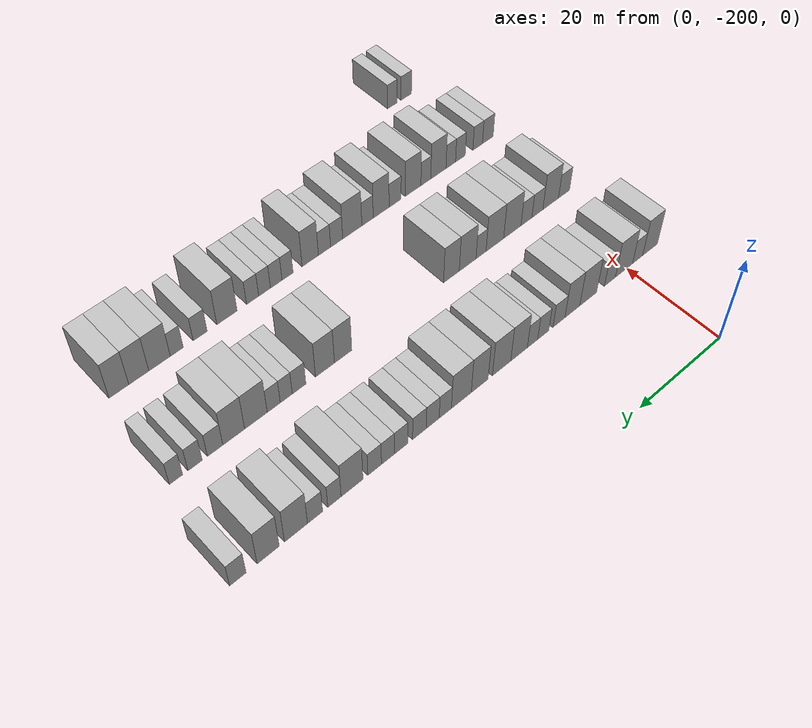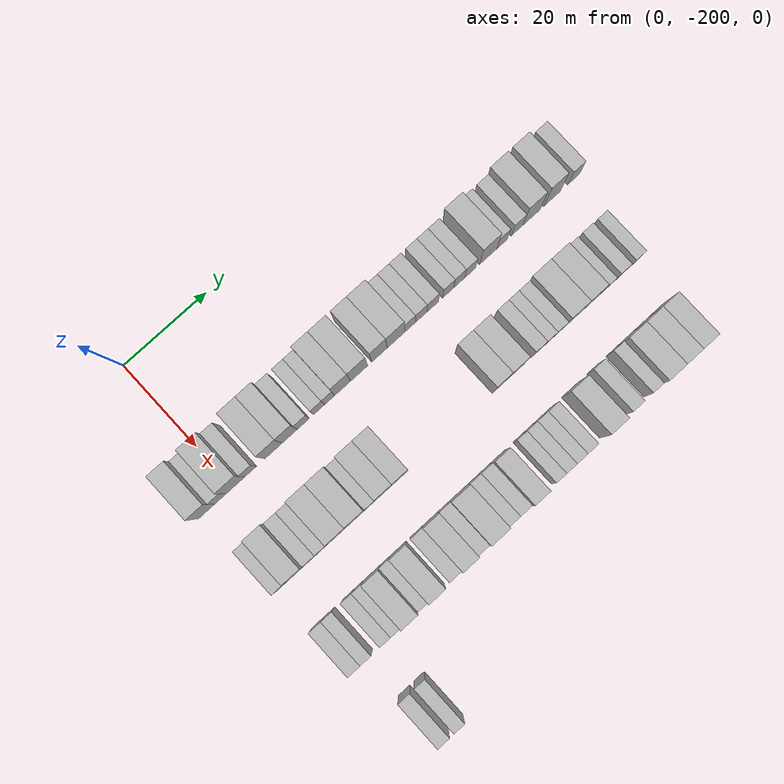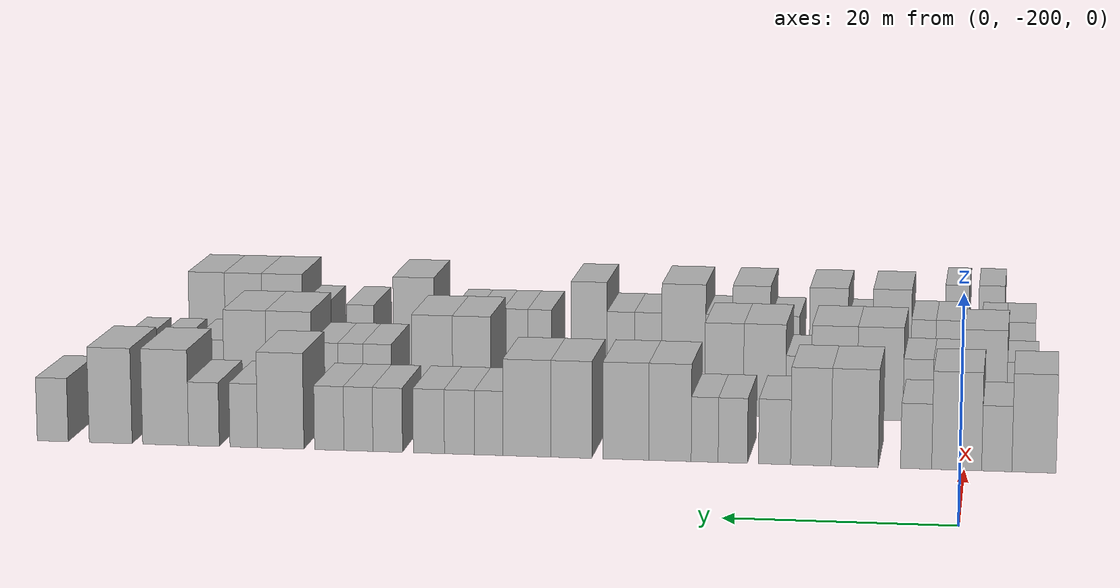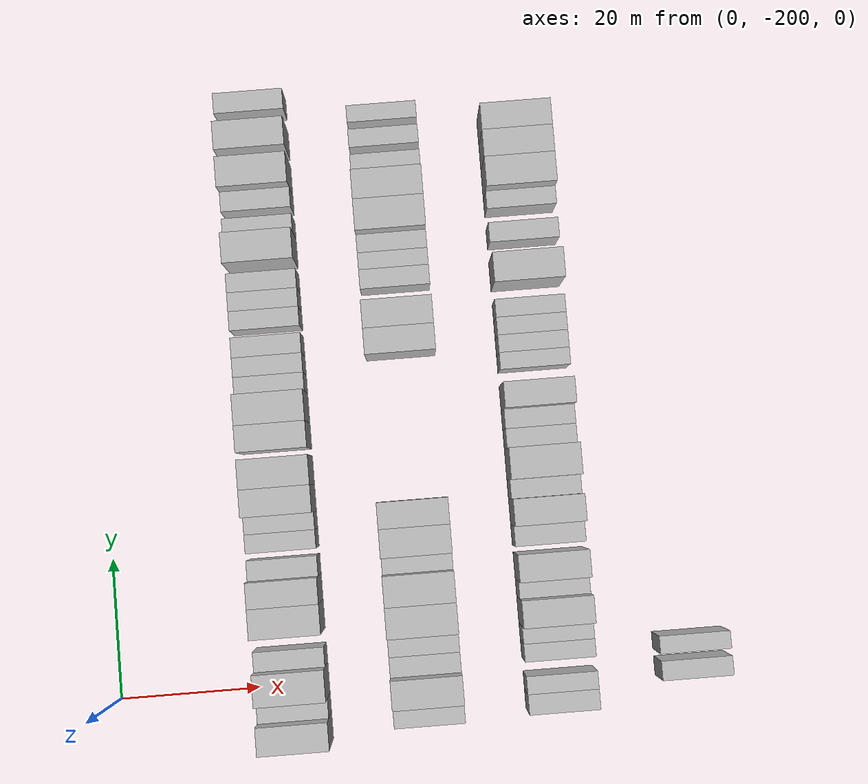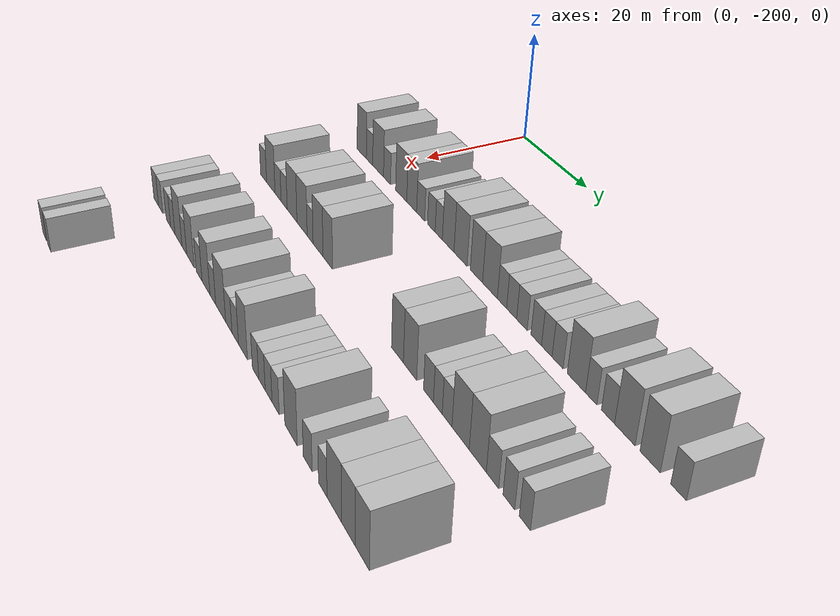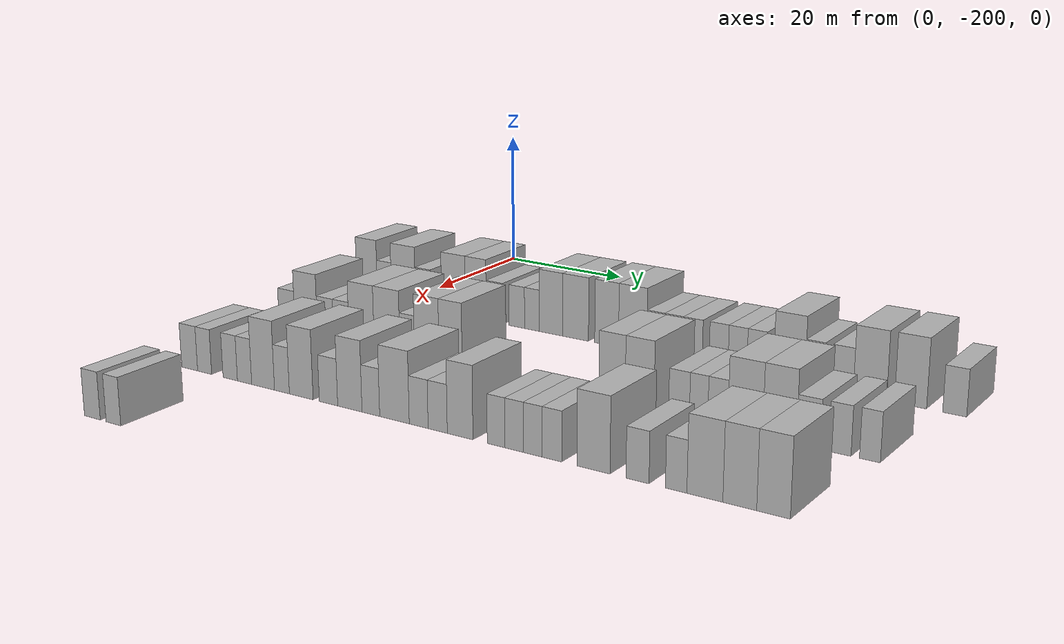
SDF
<sdf version="1.6">
 <world name="default">
  <model name="building_34">
   <static>1</static>
   <pose>25.0000 -206.1762 0 0.000000 0.000000 0.000000</pose>
   <link name="link">
    <pose>0 0 4.50 0 0 0</pose>
    <collision name="collision"><geometry><box><size>10.0000 3.9302 9.0000</size></box></geometry></collision>
    <visual name="visual">
     <cast_shadows>0</cast_shadows>
     <geometry><box><size>10.0000 3.9302 9.0000</size></box></geometry>
     <material>
      <script>
       <uri>model://HANNAS_wall/materials/scripts</uri>
       <uri>model://HANNAS_wall/materials/textures</uri>
       <name>vrc/HANNAS_wall</name>
      </script>
     </material>
    </visual>
   </link>
  </model>
  <model name="building_35">
   <static>1</static>
   <pose>25.0000 -202.8672 0 0.000000 0.000000 0.000000</pose>
   <link name="link">
    <pose>0 0 3.00 0 0 0</pose>
    <collision name="collision"><geometry><box><size>10.0000 2.6878 6.0000</size></box></geometry></collision>
    <visual name="visual">
     <cast_shadows>0</cast_shadows>
     <geometry><box><size>10.0000 2.6878 6.0000</size></box></geometry>
     <material>
      <script>
       <uri>model://HANNAS_wall/materials/scripts</uri>
       <uri>model://HANNAS_wall/materials/textures</uri>
       <name>vrc/HANNAS_wall</name>
      </script>
     </material>
    </visual>
   </link>
  </model>
  <model name="building_36">
   <static>1</static>
   <pose>25.0000 -199.2933 0 0.000000 0.000000 0.000000</pose>
   <link name="link">
    <pose>0 0 4.50 0 0 0</pose>
    <collision name="collision"><geometry><box><size>10.0000 4.4602 9.0000</size></box></geometry></collision>
    <visual name="visual">
     <cast_shadows>0</cast_shadows>
     <geometry><box><size>10.0000 4.4602 9.0000</size></box></geometry>
     <material>
      <script>
       <uri>model://HANNAS_wall/materials/scripts</uri>
       <uri>model://HANNAS_wall/materials/textures</uri>
       <name>vrc/HANNAS_wall</name>
      </script>
     </material>
    </visual>
   </link>
  </model>
  <model name="building_37">
   <static>1</static>
   <pose>25.0000 -195.6696 0 0.000000 0.000000 0.000000</pose>
   <link name="link">
    <pose>0 0 3.00 0 0 0</pose>
    <collision name="collision"><geometry><box><size>10.0000 2.7871 6.0000</size></box></geometry></collision>
    <visual name="visual">
     <cast_shadows>0</cast_shadows>
     <geometry><box><size>10.0000 2.7871 6.0000</size></box></geometry>
     <material>
      <script>
       <uri>model://HANNAS_wall/materials/scripts</uri>
       <uri>model://HANNAS_wall/materials/textures</uri>
       <name>vrc/HANNAS_wall</name>
      </script>
     </material>
    </visual>
   </link>
  </model>
  <model name="building_38">
   <static>1</static>
   <pose>25.0000 -190.1585 0 0.000000 0.000000 0.000000</pose>
   <link name="link">
    <pose>0 0 4.50 0 0 0</pose>
    <collision name="collision"><geometry><box><size>10.0000 4.2351 9.0000</size></box></geometry></collision>
    <visual name="visual">
     <cast_shadows>0</cast_shadows>
     <geometry><box><size>10.0000 4.2351 9.0000</size></box></geometry>
     <material>
      <script>
       <uri>model://HANNAS_wall/materials/scripts</uri>
       <uri>model://HANNAS_wall/materials/textures</uri>
       <name>vrc/HANNAS_wall</name>
      </script>
     </material>
    </visual>
   </link>
  </model>
  <model name="building_39">
   <static>1</static>
   <pose>25.0000 -186.2108 0 0.000000 0.000000 0.000000</pose>
   <link name="link">
    <pose>0 0 4.50 0 0 0</pose>
    <collision name="collision"><geometry><box><size>10.0000 3.6603 9.0000</size></box></geometry></collision>
    <visual name="visual">
     <cast_shadows>0</cast_shadows>
     <geometry><box><size>10.0000 3.6603 9.0000</size></box></geometry>
     <material>
      <script>
       <uri>model://HANNAS_wall/materials/scripts</uri>
       <uri>model://HANNAS_wall/materials/textures</uri>
       <name>vrc/HANNAS_wall</name>
      </script>
     </material>
    </visual>
   </link>
  </model>
  <model name="building_40">
   <static>1</static>
   <pose>25.0000 -182.9294 0 0.000000 0.000000 0.000000</pose>
   <link name="link">
    <pose>0 0 3.00 0 0 0</pose>
    <collision name="collision"><geometry><box><size>10.0000 2.9024 6.0000</size></box></geometry></collision>
    <visual name="visual">
     <cast_shadows>0</cast_shadows>
     <geometry><box><size>10.0000 2.9024 6.0000</size></box></geometry>
     <material>
      <script>
       <uri>model://HANNAS_wall/materials/scripts</uri>
       <uri>model://HANNAS_wall/materials/textures</uri>
       <name>vrc/HANNAS_wall</name>
      </script>
     </material>
    </visual>
   </link>
  </model>
  <model name="building_41">
   <static>1</static>
   <pose>25.0000 -179.1483 0 0.000000 0.000000 0.000000</pose>
   <link name="link">
    <pose>0 0 3.00 0 0 0</pose>
    <collision name="collision"><geometry><box><size>10.0000 2.6597 6.0000</size></box></geometry></collision>
    <visual name="visual">
     <cast_shadows>0</cast_shadows>
     <geometry><box><size>10.0000 2.6597 6.0000</size></box></geometry>
     <material>
      <script>
       <uri>model://HANNAS_wall/materials/scripts</uri>
       <uri>model://HANNAS_wall/materials/textures</uri>
       <name>vrc/HANNAS_wall</name>
      </script>
     </material>
    </visual>
   </link>
  </model>
  <model name="building_42">
   <static>1</static>
   <pose>25.0000 -176.5922 0 0.000000 0.000000 0.000000</pose>
   <link name="link">
    <pose>0 0 3.00 0 0 0</pose>
    <collision name="collision"><geometry><box><size>10.0000 2.4525 6.0000</size></box></geometry></collision>
    <visual name="visual">
     <cast_shadows>0</cast_shadows>
     <geometry><box><size>10.0000 2.4525 6.0000</size></box></geometry>
     <material>
      <script>
       <uri>model://HANNAS_wall/materials/scripts</uri>
       <uri>model://HANNAS_wall/materials/textures</uri>
       <name>vrc/HANNAS_wall</name>
      </script>
     </material>
    </visual>
   </link>
  </model>
  <model name="building_43">
   <static>1</static>
   <pose>25.0000 -173.4291 0 0.000000 0.000000 0.000000</pose>
   <link name="link">
    <pose>0 0 4.50 0 0 0</pose>
    <collision name="collision"><geometry><box><size>10.0000 3.8737 9.0000</size></box></geometry></collision>
    <visual name="visual">
     <cast_shadows>0</cast_shadows>
     <geometry><box><size>10.0000 3.8737 9.0000</size></box></geometry>
     <material>
      <script>
       <uri>model://HANNAS_wall/materials/scripts</uri>
       <uri>model://HANNAS_wall/materials/textures</uri>
       <name>vrc/HANNAS_wall</name>
      </script>
     </material>
    </visual>
   </link>
  </model>
  <model name="building_44">
   <static>1</static>
   <pose>25.0000 -169.3907 0 0.000000 0.000000 0.000000</pose>
   <link name="link">
    <pose>0 0 4.50 0 0 0</pose>
    <collision name="collision"><geometry><box><size>10.0000 4.2030 9.0000</size></box></geometry></collision>
    <visual name="visual">
     <cast_shadows>0</cast_shadows>
     <geometry><box><size>10.0000 4.2030 9.0000</size></box></geometry>
     <material>
      <script>
       <uri>model://HANNAS_wall/materials/scripts</uri>
       <uri>model://HANNAS_wall/materials/textures</uri>
       <name>vrc/HANNAS_wall</name>
      </script>
     </material>
    </visual>
   </link>
  </model>
  <model name="building_45">
   <static>1</static>
   <pose>25.0000 -164.4066 0 0.000000 0.000000 0.000000</pose>
   <link name="link">
    <pose>0 0 4.50 0 0 0</pose>
    <collision name="collision"><geometry><box><size>10.0000 3.7653 9.0000</size></box></geometry></collision>
    <visual name="visual">
     <cast_shadows>0</cast_shadows>
     <geometry><box><size>10.0000 3.7653 9.0000</size></box></geometry>
     <material>
      <script>
       <uri>model://HANNAS_wall/materials/scripts</uri>
       <uri>model://HANNAS_wall/materials/textures</uri>
       <name>vrc/HANNAS_wall</name>
      </script>
     </material>
    </visual>
   </link>
  </model>
  <model name="building_46">
   <static>1</static>
   <pose>25.0000 -160.3309 0 0.000000 0.000000 0.000000</pose>
   <link name="link">
    <pose>0 0 4.50 0 0 0</pose>
    <collision name="collision"><geometry><box><size>10.0000 4.3860 9.0000</size></box></geometry></collision>
    <visual name="visual">
     <cast_shadows>0</cast_shadows>
     <geometry><box><size>10.0000 4.3860 9.0000</size></box></geometry>
     <material>
      <script>
       <uri>model://HANNAS_wall/materials/scripts</uri>
       <uri>model://HANNAS_wall/materials/textures</uri>
       <name>vrc/HANNAS_wall</name>
      </script>
     </material>
    </visual>
   </link>
  </model>
  <model name="building_47">
   <static>1</static>
   <pose>25.0000 -156.8143 0 0.000000 0.000000 0.000000</pose>
   <link name="link">
    <pose>0 0 3.00 0 0 0</pose>
    <collision name="collision"><geometry><box><size>10.0000 2.6471 6.0000</size></box></geometry></collision>
    <visual name="visual">
     <cast_shadows>0</cast_shadows>
     <geometry><box><size>10.0000 2.6471 6.0000</size></box></geometry>
     <material>
      <script>
       <uri>model://HANNAS_wall/materials/scripts</uri>
       <uri>model://HANNAS_wall/materials/textures</uri>
       <name>vrc/HANNAS_wall</name>
      </script>
     </material>
    </visual>
   </link>
  </model>
  <model name="building_48">
   <static>1</static>
   <pose>25.0000 -154.0976 0 0.000000 0.000000 0.000000</pose>
   <link name="link">
    <pose>0 0 3.00 0 0 0</pose>
    <collision name="collision"><geometry><box><size>10.0000 2.7864 6.0000</size></box></geometry></collision>
    <visual name="visual">
     <cast_shadows>0</cast_shadows>
     <geometry><box><size>10.0000 2.7864 6.0000</size></box></geometry>
     <material>
      <script>
       <uri>model://HANNAS_wall/materials/scripts</uri>
       <uri>model://HANNAS_wall/materials/textures</uri>
       <name>vrc/HANNAS_wall</name>
      </script>
     </material>
    </visual>
   </link>
  </model>
  <model name="building_49">
   <static>1</static>
   <pose>25.0000 -151.2624 0 0.000000 0.000000 0.000000</pose>
   <link name="link">
    <pose>0 0 3.00 0 0 0</pose>
    <collision name="collision"><geometry><box><size>10.0000 2.8840 6.0000</size></box></geometry></collision>
    <visual name="visual">
     <cast_shadows>0</cast_shadows>
     <geometry><box><size>10.0000 2.8840 6.0000</size></box></geometry>
     <material>
      <script>
       <uri>model://HANNAS_wall/materials/scripts</uri>
       <uri>model://HANNAS_wall/materials/textures</uri>
       <name>vrc/HANNAS_wall</name>
      </script>
     </material>
    </visual>
   </link>
  </model>
  <model name="building_50">
   <static>1</static>
   <pose>25.0000 -147.4396 0 0.000000 0.000000 0.000000</pose>
   <link name="link">
    <pose>0 0 3.00 0 0 0</pose>
    <collision name="collision"><geometry><box><size>10.0000 2.7616 6.0000</size></box></geometry></collision>
    <visual name="visual">
     <cast_shadows>0</cast_shadows>
     <geometry><box><size>10.0000 2.7616 6.0000</size></box></geometry>
     <material>
      <script>
       <uri>model://HANNAS_wall/materials/scripts</uri>
       <uri>model://HANNAS_wall/materials/textures</uri>
       <name>vrc/HANNAS_wall</name>
      </script>
     </material>
    </visual>
   </link>
  </model>
  <model name="building_51">
   <static>1</static>
   <pose>25.0000 -144.7101 0 0.000000 0.000000 0.000000</pose>
   <link name="link">
    <pose>0 0 3.00 0 0 0</pose>
    <collision name="collision"><geometry><box><size>10.0000 2.6974 6.0000</size></box></geometry></collision>
    <visual name="visual">
     <cast_shadows>0</cast_shadows>
     <geometry><box><size>10.0000 2.6974 6.0000</size></box></geometry>
     <material>
      <script>
       <uri>model://HANNAS_wall/materials/scripts</uri>
       <uri>model://HANNAS_wall/materials/textures</uri>
       <name>vrc/HANNAS_wall</name>
      </script>
     </material>
    </visual>
   </link>
  </model>
  <model name="building_52">
   <static>1</static>
   <pose>25.0000 -141.9887 0 0.000000 0.000000 0.000000</pose>
   <link name="link">
    <pose>0 0 3.00 0 0 0</pose>
    <collision name="collision"><geometry><box><size>10.0000 2.7454 6.0000</size></box></geometry></collision>
    <visual name="visual">
     <cast_shadows>0</cast_shadows>
     <geometry><box><size>10.0000 2.7454 6.0000</size></box></geometry>
     <material>
      <script>
       <uri>model://HANNAS_wall/materials/scripts</uri>
       <uri>model://HANNAS_wall/materials/textures</uri>
       <name>vrc/HANNAS_wall</name>
      </script>
     </material>
    </visual>
   </link>
  </model>
  <model name="building_53">
   <static>1</static>
   <pose>25.0000 -137.4434 0 0.000000 0.000000 0.000000</pose>
   <link name="link">
    <pose>0 0 4.50 0 0 0</pose>
    <collision name="collision"><geometry><box><size>10.0000 4.3451 9.0000</size></box></geometry></collision>
    <visual name="visual">
     <cast_shadows>0</cast_shadows>
     <geometry><box><size>10.0000 4.3451 9.0000</size></box></geometry>
     <material>
      <script>
       <uri>model://HANNAS_wall/materials/scripts</uri>
       <uri>model://HANNAS_wall/materials/textures</uri>
       <name>vrc/HANNAS_wall</name>
      </script>
     </material>
    </visual>
   </link>
  </model>
  <model name="building_54">
   <static>1</static>
   <pose>25.0000 -133.9712 0 0.000000 0.000000 0.000000</pose>
   <link name="link">
    <pose>0 0 3.00 0 0 0</pose>
    <collision name="collision"><geometry><box><size>10.0000 2.5995 6.0000</size></box></geometry></collision>
    <visual name="visual">
     <cast_shadows>0</cast_shadows>
     <geometry><box><size>10.0000 2.5995 6.0000</size></box></geometry>
     <material>
      <script>
       <uri>model://HANNAS_wall/materials/scripts</uri>
       <uri>model://HANNAS_wall/materials/textures</uri>
       <name>vrc/HANNAS_wall</name>
      </script>
     </material>
    </visual>
   </link>
  </model>
  <model name="building_55">
   <static>1</static>
   <pose>25.0000 -130.2247 0 0.000000 0.000000 0.000000</pose>
   <link name="link">
    <pose>0 0 3.00 0 0 0</pose>
    <collision name="collision"><geometry><box><size>10.0000 2.8934 6.0000</size></box></geometry></collision>
    <visual name="visual">
     <cast_shadows>0</cast_shadows>
     <geometry><box><size>10.0000 2.8934 6.0000</size></box></geometry>
     <material>
      <script>
       <uri>model://HANNAS_wall/materials/scripts</uri>
       <uri>model://HANNAS_wall/materials/textures</uri>
       <name>vrc/HANNAS_wall</name>
      </script>
     </material>
    </visual>
   </link>
  </model>
  <model name="building_56">
   <static>1</static>
   <pose>25.0000 -126.6018 0 0.000000 0.000000 0.000000</pose>
   <link name="link">
    <pose>0 0 4.50 0 0 0</pose>
    <collision name="collision"><geometry><box><size>10.0000 4.3524 9.0000</size></box></geometry></collision>
    <visual name="visual">
     <cast_shadows>0</cast_shadows>
     <geometry><box><size>10.0000 4.3524 9.0000</size></box></geometry>
     <material>
      <script>
       <uri>model://HANNAS_wall/materials/scripts</uri>
       <uri>model://HANNAS_wall/materials/textures</uri>
       <name>vrc/HANNAS_wall</name>
      </script>
     </material>
    </visual>
   </link>
  </model>
  <model name="building_57">
   <static>1</static>
   <pose>25.0000 -121.3888 0 0.000000 0.000000 0.000000</pose>
   <link name="link">
    <pose>0 0 4.50 0 0 0</pose>
    <collision name="collision"><geometry><box><size>10.0000 4.0735 9.0000</size></box></geometry></collision>
    <visual name="visual">
     <cast_shadows>0</cast_shadows>
     <geometry><box><size>10.0000 4.0735 9.0000</size></box></geometry>
     <material>
      <script>
       <uri>model://HANNAS_wall/materials/scripts</uri>
       <uri>model://HANNAS_wall/materials/textures</uri>
       <name>vrc/HANNAS_wall</name>
      </script>
     </material>
    </visual>
   </link>
  </model>
  <model name="building_58">
   <static>1</static>
   <pose>25.0000 -115.8727 0 0.000000 0.000000 0.000000</pose>
   <link name="link">
    <pose>0 0 3.00 0 0 0</pose>
    <collision name="collision"><geometry><box><size>10.0000 2.9587 6.0000</size></box></geometry></collision>
    <visual name="visual">
     <cast_shadows>0</cast_shadows>
     <geometry><box><size>10.0000 2.9587 6.0000</size></box></geometry>
     <material>
      <script>
       <uri>model://HANNAS_wall/materials/scripts</uri>
       <uri>model://HANNAS_wall/materials/textures</uri>
       <name>vrc/HANNAS_wall</name>
      </script>
     </material>
    </visual>
   </link>
  </model>
  <model name="building_206">
   <static>1</static>
   <pose>44.0000 -204.9178 0 0.000000 0.000000 0.000000</pose>
   <link name="link">
    <pose>0 0 3.00 0 0 0</pose>
    <collision name="collision"><geometry><box><size>10.0000 2.9314 6.0000</size></box></geometry></collision>
    <visual name="visual">
     <cast_shadows>0</cast_shadows>
     <geometry><box><size>10.0000 2.9314 6.0000</size></box></geometry>
     <material>
      <script>
       <uri>model://HANNAS_wall/materials/scripts</uri>
       <uri>model://HANNAS_wall/materials/textures</uri>
       <name>vrc/HANNAS_wall</name>
      </script>
     </material>
    </visual>
   </link>
  </model>
  <model name="building_207">
   <static>1</static>
   <pose>44.0000 -201.3960 0 0.000000 0.000000 0.000000</pose>
   <link name="link">
    <pose>0 0 4.50 0 0 0</pose>
    <collision name="collision"><geometry><box><size>10.0000 4.1122 9.0000</size></box></geometry></collision>
    <visual name="visual">
     <cast_shadows>0</cast_shadows>
     <geometry><box><size>10.0000 4.1122 9.0000</size></box></geometry>
     <material>
      <script>
       <uri>model://HANNAS_wall/materials/scripts</uri>
       <uri>model://HANNAS_wall/materials/textures</uri>
       <name>vrc/HANNAS_wall</name>
      </script>
     </material>
    </visual>
   </link>
  </model>
  <model name="building_208">
   <static>1</static>
   <pose>44.0000 -197.9225 0 0.000000 0.000000 0.000000</pose>
   <link name="link">
    <pose>0 0 3.00 0 0 0</pose>
    <collision name="collision"><geometry><box><size>10.0000 2.8347 6.0000</size></box></geometry></collision>
    <visual name="visual">
     <cast_shadows>0</cast_shadows>
     <geometry><box><size>10.0000 2.8347 6.0000</size></box></geometry>
     <material>
      <script>
       <uri>model://HANNAS_wall/materials/scripts</uri>
       <uri>model://HANNAS_wall/materials/textures</uri>
       <name>vrc/HANNAS_wall</name>
      </script>
     </material>
    </visual>
   </link>
  </model>
  <model name="building_209">
   <static>1</static>
   <pose>44.0000 -195.1063 0 0.000000 0.000000 0.000000</pose>
   <link name="link">
    <pose>0 0 3.00 0 0 0</pose>
    <collision name="collision"><geometry><box><size>10.0000 2.7976 6.0000</size></box></geometry></collision>
    <visual name="visual">
     <cast_shadows>0</cast_shadows>
     <geometry><box><size>10.0000 2.7976 6.0000</size></box></geometry>
     <material>
      <script>
       <uri>model://HANNAS_wall/materials/scripts</uri>
       <uri>model://HANNAS_wall/materials/textures</uri>
       <name>vrc/HANNAS_wall</name>
      </script>
     </material>
    </visual>
   </link>
  </model>
  <model name="building_210">
   <static>1</static>
   <pose>44.0000 -191.5254 0 0.000000 0.000000 0.000000</pose>
   <link name="link">
    <pose>0 0 4.50 0 0 0</pose>
    <collision name="collision"><geometry><box><size>10.0000 4.3641 9.0000</size></box></geometry></collision>
    <visual name="visual">
     <cast_shadows>0</cast_shadows>
     <geometry><box><size>10.0000 4.3641 9.0000</size></box></geometry>
     <material>
      <script>
       <uri>model://HANNAS_wall/materials/scripts</uri>
       <uri>model://HANNAS_wall/materials/textures</uri>
       <name>vrc/HANNAS_wall</name>
      </script>
     </material>
    </visual>
   </link>
  </model>
  <model name="building_211">
   <static>1</static>
   <pose>44.0000 -187.1577 0 0.000000 0.000000 0.000000</pose>
   <link name="link">
    <pose>0 0 4.50 0 0 0</pose>
    <collision name="collision"><geometry><box><size>10.0000 4.3714 9.0000</size></box></geometry></collision>
    <visual name="visual">
     <cast_shadows>0</cast_shadows>
     <geometry><box><size>10.0000 4.3714 9.0000</size></box></geometry>
     <material>
      <script>
       <uri>model://HANNAS_wall/materials/scripts</uri>
       <uri>model://HANNAS_wall/materials/textures</uri>
       <name>vrc/HANNAS_wall</name>
      </script>
     </material>
    </visual>
   </link>
  </model>
  <model name="building_212">
   <static>1</static>
   <pose>44.0000 -183.7481 0 0.000000 0.000000 0.000000</pose>
   <link name="link">
    <pose>0 0 3.00 0 0 0</pose>
    <collision name="collision"><geometry><box><size>10.0000 2.4478 6.0000</size></box></geometry></collision>
    <visual name="visual">
     <cast_shadows>0</cast_shadows>
     <geometry><box><size>10.0000 2.4478 6.0000</size></box></geometry>
     <material>
      <script>
       <uri>model://HANNAS_wall/materials/scripts</uri>
       <uri>model://HANNAS_wall/materials/textures</uri>
       <name>vrc/HANNAS_wall</name>
      </script>
     </material>
    </visual>
   </link>
  </model>
  <model name="building_213">
   <static>1</static>
   <pose>44.0000 -180.5051 0 0.000000 0.000000 0.000000</pose>
   <link name="link">
    <pose>0 0 4.50 0 0 0</pose>
    <collision name="collision"><geometry><box><size>10.0000 4.0382 9.0000</size></box></geometry></collision>
    <visual name="visual">
     <cast_shadows>0</cast_shadows>
     <geometry><box><size>10.0000 4.0382 9.0000</size></box></geometry>
     <material>
      <script>
       <uri>model://HANNAS_wall/materials/scripts</uri>
       <uri>model://HANNAS_wall/materials/textures</uri>
       <name>vrc/HANNAS_wall</name>
      </script>
     </material>
    </visual>
   </link>
  </model>
  <model name="building_214">
   <static>1</static>
   <pose>44.0000 -176.6259 0 0.000000 0.000000 0.000000</pose>
   <link name="link">
    <pose>0 0 4.50 0 0 0</pose>
    <collision name="collision"><geometry><box><size>10.0000 3.7202 9.0000</size></box></geometry></collision>
    <visual name="visual">
     <cast_shadows>0</cast_shadows>
     <geometry><box><size>10.0000 3.7202 9.0000</size></box></geometry>
     <material>
      <script>
       <uri>model://HANNAS_wall/materials/scripts</uri>
       <uri>model://HANNAS_wall/materials/textures</uri>
       <name>vrc/HANNAS_wall</name>
      </script>
     </material>
    </visual>
   </link>
  </model>
  <model name="building_215">
   <static>1</static>
   <pose>44.0000 -152.1968 0 0.000000 0.000000 0.000000</pose>
   <link name="link">
    <pose>0 0 4.50 0 0 0</pose>
    <collision name="collision"><geometry><box><size>10.0000 3.7126 9.0000</size></box></geometry></collision>
    <visual name="visual">
     <cast_shadows>0</cast_shadows>
     <geometry><box><size>10.0000 3.7126 9.0000</size></box></geometry>
     <material>
      <script>
       <uri>model://HANNAS_wall/materials/scripts</uri>
       <uri>model://HANNAS_wall/materials/textures</uri>
       <name>vrc/HANNAS_wall</name>
      </script>
     </material>
    </visual>
   </link>
  </model>
  <model name="building_216">
   <static>1</static>
   <pose>44.0000 -148.3406 0 0.000000 0.000000 0.000000</pose>
   <link name="link">
    <pose>0 0 4.50 0 0 0</pose>
    <collision name="collision"><geometry><box><size>10.0000 3.9997 9.0000</size></box></geometry></collision>
    <visual name="visual">
     <cast_shadows>0</cast_shadows>
     <geometry><box><size>10.0000 3.9997 9.0000</size></box></geometry>
     <material>
      <script>
       <uri>model://HANNAS_wall/materials/scripts</uri>
       <uri>model://HANNAS_wall/materials/textures</uri>
       <name>vrc/HANNAS_wall</name>
      </script>
     </material>
    </visual>
   </link>
  </model>
  <model name="building_217">
   <static>1</static>
   <pose>44.0000 -142.9400 0 0.000000 0.000000 0.000000</pose>
   <link name="link">
    <pose>0 0 3.00 0 0 0</pose>
    <collision name="collision"><geometry><box><size>10.0000 2.8016 6.0000</size></box></geometry></collision>
    <visual name="visual">
     <cast_shadows>0</cast_shadows>
     <geometry><box><size>10.0000 2.8016 6.0000</size></box></geometry>
     <material>
      <script>
       <uri>model://HANNAS_wall/materials/scripts</uri>
       <uri>model://HANNAS_wall/materials/textures</uri>
       <name>vrc/HANNAS_wall</name>
      </script>
     </material>
    </visual>
   </link>
  </model>
  <model name="building_218">
   <static>1</static>
   <pose>44.0000 -140.3200 0 0.000000 0.000000 0.000000</pose>
   <link name="link">
    <pose>0 0 3.00 0 0 0</pose>
    <collision name="collision"><geometry><box><size>10.0000 2.4385 6.0000</size></box></geometry></collision>
    <visual name="visual">
     <cast_shadows>0</cast_shadows>
     <geometry><box><size>10.0000 2.4385 6.0000</size></box></geometry>
     <material>
      <script>
       <uri>model://HANNAS_wall/materials/scripts</uri>
       <uri>model://HANNAS_wall/materials/textures</uri>
       <name>vrc/HANNAS_wall</name>
      </script>
     </material>
    </visual>
   </link>
  </model>
  <model name="building_219">
   <static>1</static>
   <pose>44.0000 -137.7869 0 0.000000 0.000000 0.000000</pose>
   <link name="link">
    <pose>0 0 3.00 0 0 0</pose>
    <collision name="collision"><geometry><box><size>10.0000 2.6277 6.0000</size></box></geometry></collision>
    <visual name="visual">
     <cast_shadows>0</cast_shadows>
     <geometry><box><size>10.0000 2.6277 6.0000</size></box></geometry>
     <material>
      <script>
       <uri>model://HANNAS_wall/materials/scripts</uri>
       <uri>model://HANNAS_wall/materials/textures</uri>
       <name>vrc/HANNAS_wall</name>
      </script>
     </material>
    </visual>
   </link>
  </model>
  <model name="building_220">
   <static>1</static>
   <pose>44.0000 -134.2328 0 0.000000 0.000000 0.000000</pose>
   <link name="link">
    <pose>0 0 4.50 0 0 0</pose>
    <collision name="collision"><geometry><box><size>10.0000 4.4805 9.0000</size></box></geometry></collision>
    <visual name="visual">
     <cast_shadows>0</cast_shadows>
     <geometry><box><size>10.0000 4.4805 9.0000</size></box></geometry>
     <material>
      <script>
       <uri>model://HANNAS_wall/materials/scripts</uri>
       <uri>model://HANNAS_wall/materials/textures</uri>
       <name>vrc/HANNAS_wall</name>
      </script>
     </material>
    </visual>
   </link>
  </model>
  <model name="building_221">
   <static>1</static>
   <pose>44.0000 -129.8819 0 0.000000 0.000000 0.000000</pose>
   <link name="link">
    <pose>0 0 4.50 0 0 0</pose>
    <collision name="collision"><geometry><box><size>10.0000 4.2213 9.0000</size></box></geometry></collision>
    <visual name="visual">
     <cast_shadows>0</cast_shadows>
     <geometry><box><size>10.0000 4.2213 9.0000</size></box></geometry>
     <material>
      <script>
       <uri>model://HANNAS_wall/materials/scripts</uri>
       <uri>model://HANNAS_wall/materials/textures</uri>
       <name>vrc/HANNAS_wall</name>
      </script>
     </material>
    </visual>
   </link>
  </model>
  <model name="building_222">
   <static>1</static>
   <pose>44.0000 -126.2952 0 0.000000 0.000000 0.000000</pose>
   <link name="link">
    <pose>0 0 3.00 0 0 0</pose>
    <collision name="collision"><geometry><box><size>10.0000 2.9522 6.0000</size></box></geometry></collision>
    <visual name="visual">
     <cast_shadows>0</cast_shadows>
     <geometry><box><size>10.0000 2.9522 6.0000</size></box></geometry>
     <material>
      <script>
       <uri>model://HANNAS_wall/materials/scripts</uri>
       <uri>model://HANNAS_wall/materials/textures</uri>
       <name>vrc/HANNAS_wall</name>
      </script>
     </material>
    </visual>
   </link>
  </model>
  <model name="building_223">
   <static>1</static>
   <pose>44.0000 -122.4851 0 0.000000 0.000000 0.000000</pose>
   <link name="link">
    <pose>0 0 3.00 0 0 0</pose>
    <collision name="collision"><geometry><box><size>10.0000 2.6678 6.0000</size></box></geometry></collision>
    <visual name="visual">
     <cast_shadows>0</cast_shadows>
     <geometry><box><size>10.0000 2.6678 6.0000</size></box></geometry>
     <material>
      <script>
       <uri>model://HANNAS_wall/materials/scripts</uri>
       <uri>model://HANNAS_wall/materials/textures</uri>
       <name>vrc/HANNAS_wall</name>
      </script>
     </material>
    </visual>
   </link>
  </model>
  <model name="building_224">
   <static>1</static>
   <pose>44.0000 -118.9245 0 0.000000 0.000000 0.000000</pose>
   <link name="link">
    <pose>0 0 3.00 0 0 0</pose>
    <collision name="collision"><geometry><box><size>10.0000 2.4534 6.0000</size></box></geometry></collision>
    <visual name="visual">
     <cast_shadows>0</cast_shadows>
     <geometry><box><size>10.0000 2.4534 6.0000</size></box></geometry>
     <material>
      <script>
       <uri>model://HANNAS_wall/materials/scripts</uri>
       <uri>model://HANNAS_wall/materials/textures</uri>
       <name>vrc/HANNAS_wall</name>
      </script>
     </material>
    </visual>
   </link>
  </model>
  <model name="building_378">
   <static>1</static>
   <pose>63.0000 -204.5809 0 0.000000 0.000000 0.000000</pose>
   <link name="link">
    <pose>0 0 3.00 0 0 0</pose>
    <collision name="collision"><geometry><box><size>10.0000 2.8508 6.0000</size></box></geometry></collision>
    <visual name="visual">
     <cast_shadows>0</cast_shadows>
     <geometry><box><size>10.0000 2.8508 6.0000</size></box></geometry>
     <material>
      <script>
       <uri>model://HANNAS_wall/materials/scripts</uri>
       <uri>model://HANNAS_wall/materials/textures</uri>
       <name>vrc/HANNAS_wall</name>
      </script>
     </material>
    </visual>
   </link>
  </model>
  <model name="building_379">
   <static>1</static>
   <pose>63.0000 -201.9021 0 0.000000 0.000000 0.000000</pose>
   <link name="link">
    <pose>0 0 3.00 0 0 0</pose>
    <collision name="collision"><geometry><box><size>10.0000 2.5069 6.0000</size></box></geometry></collision>
    <visual name="visual">
     <cast_shadows>0</cast_shadows>
     <geometry><box><size>10.0000 2.5069 6.0000</size></box></geometry>
     <material>
      <script>
       <uri>model://HANNAS_wall/materials/scripts</uri>
       <uri>model://HANNAS_wall/materials/textures</uri>
       <name>vrc/HANNAS_wall</name>
      </script>
     </material>
    </visual>
   </link>
  </model>
  <model name="building_380">
   <static>1</static>
   <pose>63.0000 -197.3966 0 0.000000 0.000000 0.000000</pose>
   <link name="link">
    <pose>0 0 3.00 0 0 0</pose>
    <collision name="collision"><geometry><box><size>10.0000 2.5039 6.0000</size></box></geometry></collision>
    <visual name="visual">
     <cast_shadows>0</cast_shadows>
     <geometry><box><size>10.0000 2.5039 6.0000</size></box></geometry>
     <material>
      <script>
       <uri>model://HANNAS_wall/materials/scripts</uri>
       <uri>model://HANNAS_wall/materials/textures</uri>
       <name>vrc/HANNAS_wall</name>
      </script>
     </material>
    </visual>
   </link>
  </model>
  <model name="building_381">
   <static>1</static>
   <pose>63.0000 -194.9215 0 0.000000 0.000000 0.000000</pose>
   <link name="link">
    <pose>0 0 3.00 0 0 0</pose>
    <collision name="collision"><geometry><box><size>10.0000 2.4464 6.0000</size></box></geometry></collision>
    <visual name="visual">
     <cast_shadows>0</cast_shadows>
     <geometry><box><size>10.0000 2.4464 6.0000</size></box></geometry>
     <material>
      <script>
       <uri>model://HANNAS_wall/materials/scripts</uri>
       <uri>model://HANNAS_wall/materials/textures</uri>
       <name>vrc/HANNAS_wall</name>
      </script>
     </material>
    </visual>
   </link>
  </model>
  <model name="building_382">
   <static>1</static>
   <pose>63.0000 -191.7710 0 0.000000 0.000000 0.000000</pose>
   <link name="link">
    <pose>0 0 4.50 0 0 0</pose>
    <collision name="collision"><geometry><box><size>10.0000 3.8546 9.0000</size></box></geometry></collision>
    <visual name="visual">
     <cast_shadows>0</cast_shadows>
     <geometry><box><size>10.0000 3.8546 9.0000</size></box></geometry>
     <material>
      <script>
       <uri>model://HANNAS_wall/materials/scripts</uri>
       <uri>model://HANNAS_wall/materials/textures</uri>
       <name>vrc/HANNAS_wall</name>
      </script>
     </material>
    </visual>
   </link>
  </model>
  <model name="building_383">
   <static>1</static>
   <pose>63.0000 -188.6099 0 0.000000 0.000000 0.000000</pose>
   <link name="link">
    <pose>0 0 3.00 0 0 0</pose>
    <collision name="collision"><geometry><box><size>10.0000 2.4677 6.0000</size></box></geometry></collision>
    <visual name="visual">
     <cast_shadows>0</cast_shadows>
     <geometry><box><size>10.0000 2.4677 6.0000</size></box></geometry>
     <material>
      <script>
       <uri>model://HANNAS_wall/materials/scripts</uri>
       <uri>model://HANNAS_wall/materials/textures</uri>
       <name>vrc/HANNAS_wall</name>
      </script>
     </material>
    </visual>
   </link>
  </model>
  <model name="building_384">
   <static>1</static>
   <pose>63.0000 -185.4399 0 0.000000 0.000000 0.000000</pose>
   <link name="link">
    <pose>0 0 4.50 0 0 0</pose>
    <collision name="collision"><geometry><box><size>10.0000 3.8722 9.0000</size></box></geometry></collision>
    <visual name="visual">
     <cast_shadows>0</cast_shadows>
     <geometry><box><size>10.0000 3.8722 9.0000</size></box></geometry>
     <material>
      <script>
       <uri>model://HANNAS_wall/materials/scripts</uri>
       <uri>model://HANNAS_wall/materials/textures</uri>
       <name>vrc/HANNAS_wall</name>
      </script>
     </material>
    </visual>
   </link>
  </model>
  <model name="building_385">
   <static>1</static>
   <pose>63.0000 -181.0433 0 0.000000 0.000000 0.000000</pose>
   <link name="link">
    <pose>0 0 3.00 0 0 0</pose>
    <collision name="collision"><geometry><box><size>10.0000 2.9210 6.0000</size></box></geometry></collision>
    <visual name="visual">
     <cast_shadows>0</cast_shadows>
     <geometry><box><size>10.0000 2.9210 6.0000</size></box></geometry>
     <material>
      <script>
       <uri>model://HANNAS_wall/materials/scripts</uri>
       <uri>model://HANNAS_wall/materials/textures</uri>
       <name>vrc/HANNAS_wall</name>
      </script>
     </material>
    </visual>
   </link>
  </model>
  <model name="building_386">
   <static>1</static>
   <pose>63.0000 -177.6769 0 0.000000 0.000000 0.000000</pose>
   <link name="link">
    <pose>0 0 4.50 0 0 0</pose>
    <collision name="collision"><geometry><box><size>10.0000 3.8117 9.0000</size></box></geometry></collision>
    <visual name="visual">
     <cast_shadows>0</cast_shadows>
     <geometry><box><size>10.0000 3.8117 9.0000</size></box></geometry>
     <material>
      <script>
       <uri>model://HANNAS_wall/materials/scripts</uri>
       <uri>model://HANNAS_wall/materials/textures</uri>
       <name>vrc/HANNAS_wall</name>
      </script>
     </material>
    </visual>
   </link>
  </model>
  <model name="building_387">
   <static>1</static>
   <pose>63.0000 -174.4155 0 0.000000 0.000000 0.000000</pose>
   <link name="link">
    <pose>0 0 3.00 0 0 0</pose>
    <collision name="collision"><geometry><box><size>10.0000 2.7111 6.0000</size></box></geometry></collision>
    <visual name="visual">
     <cast_shadows>0</cast_shadows>
     <geometry><box><size>10.0000 2.7111 6.0000</size></box></geometry>
     <material>
      <script>
       <uri>model://HANNAS_wall/materials/scripts</uri>
       <uri>model://HANNAS_wall/materials/textures</uri>
       <name>vrc/HANNAS_wall</name>
      </script>
     </material>
    </visual>
   </link>
  </model>
  <model name="building_388">
   <static>1</static>
   <pose>63.0000 -170.8322 0 0.000000 0.000000 0.000000</pose>
   <link name="link">
    <pose>0 0 4.50 0 0 0</pose>
    <collision name="collision"><geometry><box><size>10.0000 4.4555 9.0000</size></box></geometry></collision>
    <visual name="visual">
     <cast_shadows>0</cast_shadows>
     <geometry><box><size>10.0000 4.4555 9.0000</size></box></geometry>
     <material>
      <script>
       <uri>model://HANNAS_wall/materials/scripts</uri>
       <uri>model://HANNAS_wall/materials/textures</uri>
       <name>vrc/HANNAS_wall</name>
      </script>
     </material>
    </visual>
   </link>
  </model>
  <model name="building_389">
   <static>1</static>
   <pose>63.0000 -167.2144 0 0.000000 0.000000 0.000000</pose>
   <link name="link">
    <pose>0 0 3.00 0 0 0</pose>
    <collision name="collision"><geometry><box><size>10.0000 2.7800 6.0000</size></box></geometry></collision>
    <visual name="visual">
     <cast_shadows>0</cast_shadows>
     <geometry><box><size>10.0000 2.7800 6.0000</size></box></geometry>
     <material>
      <script>
       <uri>model://HANNAS_wall/materials/scripts</uri>
       <uri>model://HANNAS_wall/materials/textures</uri>
       <name>vrc/HANNAS_wall</name>
      </script>
     </material>
    </visual>
   </link>
  </model>
  <model name="building_390">
   <static>1</static>
   <pose>63.0000 -164.4337 0 0.000000 0.000000 0.000000</pose>
   <link name="link">
    <pose>0 0 3.00 0 0 0</pose>
    <collision name="collision"><geometry><box><size>10.0000 2.7814 6.0000</size></box></geometry></collision>
    <visual name="visual">
     <cast_shadows>0</cast_shadows>
     <geometry><box><size>10.0000 2.7814 6.0000</size></box></geometry>
     <material>
      <script>
       <uri>model://HANNAS_wall/materials/scripts</uri>
       <uri>model://HANNAS_wall/materials/textures</uri>
       <name>vrc/HANNAS_wall</name>
      </script>
     </material>
    </visual>
   </link>
  </model>
  <model name="building_391">
   <static>1</static>
   <pose>63.0000 -161.2135 0 0.000000 0.000000 0.000000</pose>
   <link name="link">
    <pose>0 0 4.50 0 0 0</pose>
    <collision name="collision"><geometry><box><size>10.0000 3.6589 9.0000</size></box></geometry></collision>
    <visual name="visual">
     <cast_shadows>0</cast_shadows>
     <geometry><box><size>10.0000 3.6589 9.0000</size></box></geometry>
     <material>
      <script>
       <uri>model://HANNAS_wall/materials/scripts</uri>
       <uri>model://HANNAS_wall/materials/textures</uri>
       <name>vrc/HANNAS_wall</name>
      </script>
     </material>
    </visual>
   </link>
  </model>
  <model name="building_392">
   <static>1</static>
   <pose>63.0000 -156.1654 0 0.000000 0.000000 0.000000</pose>
   <link name="link">
    <pose>0 0 3.00 0 0 0</pose>
    <collision name="collision"><geometry><box><size>10.0000 2.4373 6.0000</size></box></geometry></collision>
    <visual name="visual">
     <cast_shadows>0</cast_shadows>
     <geometry><box><size>10.0000 2.4373 6.0000</size></box></geometry>
     <material>
      <script>
       <uri>model://HANNAS_wall/materials/scripts</uri>
       <uri>model://HANNAS_wall/materials/textures</uri>
       <name>vrc/HANNAS_wall</name>
      </script>
     </material>
    </visual>
   </link>
  </model>
  <model name="building_393">
   <static>1</static>
   <pose>63.0000 -153.6928 0 0.000000 0.000000 0.000000</pose>
   <link name="link">
    <pose>0 0 3.00 0 0 0</pose>
    <collision name="collision"><geometry><box><size>10.0000 2.5080 6.0000</size></box></geometry></collision>
    <visual name="visual">
     <cast_shadows>0</cast_shadows>
     <geometry><box><size>10.0000 2.5080 6.0000</size></box></geometry>
     <material>
      <script>
       <uri>model://HANNAS_wall/materials/scripts</uri>
       <uri>model://HANNAS_wall/materials/textures</uri>
       <name>vrc/HANNAS_wall</name>
      </script>
     </material>
    </visual>
   </link>
  </model>
  <model name="building_394">
   <static>1</static>
   <pose>63.0000 -151.1677 0 0.000000 0.000000 0.000000</pose>
   <link name="link">
    <pose>0 0 3.00 0 0 0</pose>
    <collision name="collision"><geometry><box><size>10.0000 2.5423 6.0000</size></box></geometry></collision>
    <visual name="visual">
     <cast_shadows>0</cast_shadows>
     <geometry><box><size>10.0000 2.5423 6.0000</size></box></geometry>
     <material>
      <script>
       <uri>model://HANNAS_wall/materials/scripts</uri>
       <uri>model://HANNAS_wall/materials/textures</uri>
       <name>vrc/HANNAS_wall</name>
      </script>
     </material>
    </visual>
   </link>
  </model>
  <model name="building_395">
   <static>1</static>
   <pose>63.0000 -148.6049 0 0.000000 0.000000 0.000000</pose>
   <link name="link">
    <pose>0 0 3.00 0 0 0</pose>
    <collision name="collision"><geometry><box><size>10.0000 2.5834 6.0000</size></box></geometry></collision>
    <visual name="visual">
     <cast_shadows>0</cast_shadows>
     <geometry><box><size>10.0000 2.5834 6.0000</size></box></geometry>
     <material>
      <script>
       <uri>model://HANNAS_wall/materials/scripts</uri>
       <uri>model://HANNAS_wall/materials/textures</uri>
       <name>vrc/HANNAS_wall</name>
      </script>
     </material>
    </visual>
   </link>
  </model>
  <model name="building_396">
   <static>1</static>
   <pose>63.0000 -143.1976 0 0.000000 0.000000 0.000000</pose>
   <link name="link">
    <pose>0 0 4.50 0 0 0</pose>
    <collision name="collision"><geometry><box><size>10.0000 4.2313 9.0000</size></box></geometry></collision>
    <visual name="visual">
     <cast_shadows>0</cast_shadows>
     <geometry><box><size>10.0000 4.2313 9.0000</size></box></geometry>
     <material>
      <script>
       <uri>model://HANNAS_wall/materials/scripts</uri>
       <uri>model://HANNAS_wall/materials/textures</uri>
       <name>vrc/HANNAS_wall</name>
      </script>
     </material>
    </visual>
   </link>
  </model>
  <model name="building_397">
   <static>1</static>
   <pose>63.0000 -137.6593 0 0.000000 0.000000 0.000000</pose>
   <link name="link">
    <pose>0 0 3.00 0 0 0</pose>
    <collision name="collision"><geometry><box><size>10.0000 2.8453 6.0000</size></box></geometry></collision>
    <visual name="visual">
     <cast_shadows>0</cast_shadows>
     <geometry><box><size>10.0000 2.8453 6.0000</size></box></geometry>
     <material>
      <script>
       <uri>model://HANNAS_wall/materials/scripts</uri>
       <uri>model://HANNAS_wall/materials/textures</uri>
       <name>vrc/HANNAS_wall</name>
      </script>
     </material>
    </visual>
   </link>
  </model>
  <model name="building_398">
   <static>1</static>
   <pose>63.0000 -132.9473 0 0.000000 0.000000 0.000000</pose>
   <link name="link">
    <pose>0 0 3.00 0 0 0</pose>
    <collision name="collision"><geometry><box><size>10.0000 2.5787 6.0000</size></box></geometry></collision>
    <visual name="visual">
     <cast_shadows>0</cast_shadows>
     <geometry><box><size>10.0000 2.5787 6.0000</size></box></geometry>
     <material>
      <script>
       <uri>model://HANNAS_wall/materials/scripts</uri>
       <uri>model://HANNAS_wall/materials/textures</uri>
       <name>vrc/HANNAS_wall</name>
      </script>
     </material>
    </visual>
   </link>
  </model>
  <model name="building_399">
   <static>1</static>
   <pose>63.0000 -129.5446 0 0.000000 0.000000 0.000000</pose>
   <link name="link">
    <pose>0 0 4.50 0 0 0</pose>
    <collision name="collision"><geometry><box><size>10.0000 4.2268 9.0000</size></box></geometry></collision>
    <visual name="visual">
     <cast_shadows>0</cast_shadows>
     <geometry><box><size>10.0000 4.2268 9.0000</size></box></geometry>
     <material>
      <script>
       <uri>model://HANNAS_wall/materials/scripts</uri>
       <uri>model://HANNAS_wall/materials/textures</uri>
       <name>vrc/HANNAS_wall</name>
      </script>
     </material>
    </visual>
   </link>
  </model>
  <model name="building_400">
   <static>1</static>
   <pose>63.0000 -125.4927 0 0.000000 0.000000 0.000000</pose>
   <link name="link">
    <pose>0 0 4.50 0 0 0</pose>
    <collision name="collision"><geometry><box><size>10.0000 3.8770 9.0000</size></box></geometry></collision>
    <visual name="visual">
     <cast_shadows>0</cast_shadows>
     <geometry><box><size>10.0000 3.8770 9.0000</size></box></geometry>
     <material>
      <script>
       <uri>model://HANNAS_wall/materials/scripts</uri>
       <uri>model://HANNAS_wall/materials/textures</uri>
       <name>vrc/HANNAS_wall</name>
      </script>
     </material>
    </visual>
   </link>
  </model>
  <model name="building_401">
   <static>1</static>
   <pose>63.0000 -121.6686 0 0.000000 0.000000 0.000000</pose>
   <link name="link">
    <pose>0 0 4.50 0 0 0</pose>
    <collision name="collision"><geometry><box><size>10.0000 3.7712 9.0000</size></box></geometry></collision>
    <visual name="visual">
     <cast_shadows>0</cast_shadows>
     <geometry><box><size>10.0000 3.7712 9.0000</size></box></geometry>
     <material>
      <script>
       <uri>model://HANNAS_wall/materials/scripts</uri>
       <uri>model://HANNAS_wall/materials/textures</uri>
       <name>vrc/HANNAS_wall</name>
      </script>
     </material>
    </visual>
   </link>
  </model>
  <model name="building_559">
   <static>1</static>
   <pose>82.0000 -201.3870 0 0.000000 0.000000 0.000000</pose>
   <link name="link">
    <pose>0 0 3.00 0 0 0</pose>
    <collision name="collision"><geometry><box><size>10.0000 2.7289 6.0000</size></box></geometry></collision>
    <visual name="visual">
     <cast_shadows>0</cast_shadows>
     <geometry><box><size>10.0000 2.7289 6.0000</size></box></geometry>
     <material>
      <script>
       <uri>model://HANNAS_wall/materials/scripts</uri>
       <uri>model://HANNAS_wall/materials/textures</uri>
       <name>vrc/HANNAS_wall</name>
      </script>
     </material>
    </visual>
   </link>
  </model>
  <model name="building_560">
   <static>1</static>
   <pose>82.0000 -197.7768 0 0.000000 0.000000 0.000000</pose>
   <link name="link">
    <pose>0 0 3.00 0 0 0</pose>
    <collision name="collision"><geometry><box><size>10.0000 2.4915 6.0000</size></box></geometry></collision>
    <visual name="visual">
     <cast_shadows>0</cast_shadows>
     <geometry><box><size>10.0000 2.4915 6.0000</size></box></geometry>
     <material>
      <script>
       <uri>model://HANNAS_wall/materials/scripts</uri>
       <uri>model://HANNAS_wall/materials/textures</uri>
       <name>vrc/HANNAS_wall</name>
      </script>
     </material>
    </visual>
   </link>
  </model>
 </world>
</sdf>
